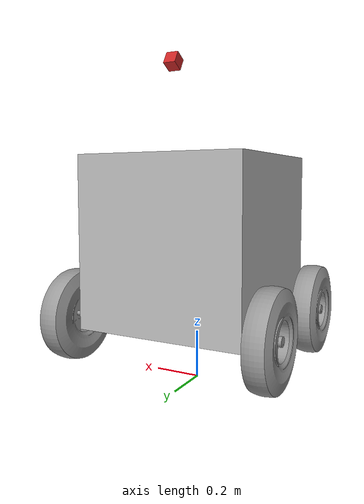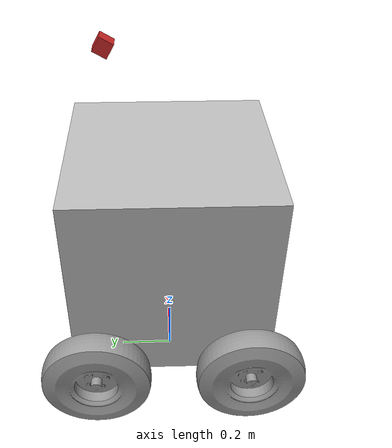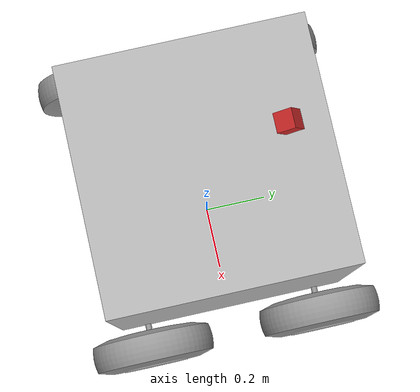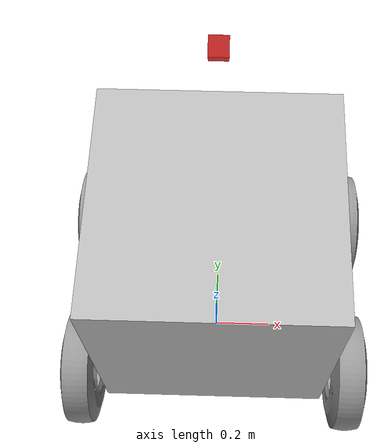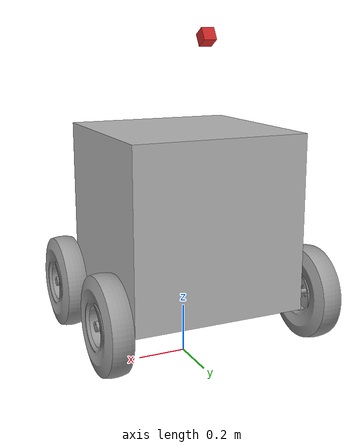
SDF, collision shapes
<?xml version='1.0'?>
<sdf version='1.4'>
  <model name='scipio_simulation'>
    <static>false</static>
    <pose>0 0 0.1 0 0 1.57</pose>
    <link name='base_link'>
      <pose>0 0 0 0 -0 0</pose>
      <inertial>
        <pose>0.00808696 0.174209 -5.1079e-07 0 -0 0</pose>
        <mass>30.6648</mass>
        <inertia>
          <ixx>2.53655</ixx>
          <ixy>-0.0102253</ixy>
          <ixz>1.17409e-05</ixz>
          <iyy>4.29926</iyy>
          <iyz>1.93444e-07</iyz>
          <izz>2.13276</izz>
        </inertia>
      </inertial>
      <collision name='base_link_collision'>
        <pose>0 0 0.5 0 -0 0</pose>
        <geometry>
           <box>
             <size>0.7 0.7 0.7</size>
           </box>
        </geometry>
      </collision>
      <visual name='base_link_visual'>
        <pose>0.049 0.009 0 0 -0 0</pose>
        <geometry>
          <mesh>
            <scale>1 1 1</scale>
            <uri>model://scipio_simulation/meshes/base_link.DAE</uri>
          </mesh>
        </geometry>
      </visual>
      <velocity_decay>
        <linear>0</linear>
        <angular>0</angular>
      </velocity_decay>
    </link>

    <link name='back_left_wheel_link'>
      <pose>0.26746 -0.17757 0.18923 3.0728 -6.245e-17 -1.5708</pose>
      <inertial>
        <pose>0.24702 -3.7896e-07 7.5693e-06 0 -0 0</pose>
        <mass>11.018</mass>
        <inertia>
          <ixx>0.20289</ixx>
          <ixy>2.1691e-07</ixy>
          <ixz>-4.2814e-06</ixz>
          <iyy>0.1147</iyy>
          <iyz>3.8435e-08</iyz>
          <izz>0.1147</izz>
        </inertia>
      </inertial>
      <collision name='back_left_wheel_link_collision'>
        <pose>0 0 0 0 -0 0</pose>
        <geometry>
          <mesh>
            <scale>1 1 1</scale>
            <uri>model://scipio_simulation/meshes/back_left_wheel_link.STL</uri>
          </mesh>
        </geometry>
      </collision>
      <visual name='back_left_wheel_link_visual'>
        <pose>0 0 0 0 -0 0</pose>
        <geometry>
          <mesh>
            <scale>1 1 1</scale>
            <uri>model://scipio_simulation/meshes/back_left_wheel_link.STL</uri>
          </mesh>
        </geometry>
        <material>
          <script>
            <uri>file://media/materials/scripts/gazebo.material</uri>
            <name>Gazebo/Grey</name>
          </script>
        </material>
      </visual>
      <velocity_decay>
        <linear>0</linear>
        <angular>0</angular>
      </velocity_decay>
    </link>
    <joint name='back_left_wheel_joint' type='revolute'>
      <child>back_left_wheel_link</child>
      <parent>base_link</parent>
      <axis>
        <xyz>3.67321e-06 1 -5.89806e-17</xyz>
        <limit>
          <lower>-1e+16</lower>
          <upper>1e+16</upper>
        </limit>
      </axis>
    </joint>

    <link name='back_right_wheel_link'>
      <pose>0.26746 0.17757 0.18923 -3.0192 5.55112e-17 1.5708</pose>
      <inertial>
        <pose>0.24702 -2.4732e-06 -7.1639e-06 0 -0 0</pose>
        <mass>11.018</mass>
        <inertia>
          <ixx>0.20289</ixx>
          <ixy>1.3965e-06</ixy>
          <ixz>4.0531e-06</ixz>
          <iyy>0.1147</iyy>
          <iyz>-2.2566e-07</iyz>
          <izz>0.1147</izz>
        </inertia>
      </inertial>
      <collision name='back_right_wheel_link_collision'>
        <pose>0 0 0 0 -0 0</pose>
        <geometry>
          <mesh>
            <scale>1 1 1</scale>
            <uri>model://scipio_simulation/meshes/back_right_wheel_link.STL</uri>
          </mesh>
        </geometry>
      </collision>
      <visual name='back_right_wheel_link_visual'>
        <pose>0 0 0 0 -0 0</pose>
        <geometry>
          <mesh>
            <scale>1 1 1</scale>
            <uri>model://scipio_simulation/meshes/back_right_wheel_link.STL</uri>
          </mesh>
        </geometry>
        <material>
          <script>
            <uri>file://media/materials/scripts/gazebo.material</uri>
            <name>Gazebo/Grey</name>
          </script>
        </material>
      </visual>
      <velocity_decay>
        <linear>0</linear>
        <angular>0</angular>
      </velocity_decay>
    </link>
    <joint name='back_right_wheel_joint' type='revolute'>
      <child>back_right_wheel_link</child>
      <parent>base_link</parent>
      <axis>
        <xyz>-3.67321e-06 1 -5.55112e-17</xyz>
        <limit>
          <lower>-1e+16</lower>
          <upper>1e+16</upper>
        </limit>
      </axis>
    </joint>

    <link name='front_left_wheel_link'>
      <pose>-0.26746 -0.17757 0.18923 3.0516 -5.55112e-17 -1.5708</pose>
      <inertial>
        <pose>0.24702 -6.9913e-07 7.5465e-06 0 -0 0</pose>
        <mass>11.018</mass>
        <inertia>
          <ixx>0.20289</ixx>
          <ixy>3.9801e-07</ixy>
          <ixz>-4.2684e-06</ixz>
          <iyy>0.1147</iyy>
          <iyz>6.9259e-08</iyz>
          <izz>0.1147</izz>
        </inertia>
      </inertial>
      <collision name='front_left_wheel_link_collision'>
        <pose>0 0 0 0 -0 0</pose>
        <geometry>
          <mesh>
            <scale>1 1 1</scale>
            <uri>model://scipio_simulation/meshes/front_left_wheel_link.STL</uri>
          </mesh>
        </geometry>
      </collision>
      <visual name='front_left_wheel_link_visual'>
        <pose>0 0 0 0 -0 0</pose>
        <geometry>
          <mesh>
            <scale>1 1 1</scale>
            <uri>model://scipio_simulation/meshes/front_left_wheel_link.STL</uri>
          </mesh>
        </geometry>
        <material>
          <script>
            <uri>file://media/materials/scripts/gazebo.material</uri>
            <name>Gazebo/Grey</name>
          </script>
        </material>
      </visual>
      <velocity_decay>
        <linear>0</linear>
        <angular>0</angular>
      </velocity_decay>
    </link>
    <joint name='front_left_wheel_joint' type='revolute'>
      <child>front_left_wheel_link</child>
      <parent>base_link</parent>
      <axis>
        <xyz>3.67321e-06 1 -5.55112e-17</xyz>
        <limit>
          <lower>-1e+16</lower>
          <upper>1e+16</upper>
        </limit>
      </axis>
    </joint>

    <link name='front_right_wheel_link'>
      <pose>-0.26746 0.17757 0.18923 -3.1282 5.81132e-17 1.5708</pose>
      <inertial>
        <pose>0.24702 -8.6541e-07 -7.5292e-06 0 -0 0</pose>
        <mass>11.018</mass>
        <inertia>
          <ixx>0.20289</ixx>
          <ixy>4.8698e-07</ixy>
          <ixz>4.2592e-06</ixz>
          <iyy>0.1147</iyy>
          <iyz>-8.183e-08</iyz>
          <izz>0.1147</izz>
        </inertia>
      </inertial>
      <collision name='front_right_wheel_link_collision'>
        <pose>0 0 0 0 -0 0</pose>
        <geometry>
          <mesh>
            <scale>1 1 1</scale>
            <uri>model://scipio_simulation/meshes/front_right_wheel_link.STL</uri>
          </mesh>
        </geometry>
      </collision>
      <visual name='front_right_wheel_link_visual'>
        <pose>0 0 0 0 -0 0</pose>
        <geometry>
          <mesh>
            <scale>1 1 1</scale>
            <uri>model://scipio_simulation/meshes/front_right_wheel_link.STL</uri>
          </mesh>
        </geometry>
        <material>
          <script>
            <uri>file://media/materials/scripts/gazebo.material</uri>
            <name>Gazebo/Grey</name>
          </script>
        </material>
      </visual>
      <velocity_decay>
        <linear>0</linear>
        <angular>0</angular>
      </velocity_decay>
    </link>
    <joint name='front_right_wheel_joint' type='revolute'>
      <child>front_right_wheel_link</child>
      <parent>base_link</parent>
      <axis>
        <xyz>-3.67321e-06 1 -5.9848e-17</xyz>
        <limit>
          <lower>-1e+16</lower>
          <upper>1e+16</upper>
        </limit>
      </axis>
    </joint>

    <joint name="blackfly_mount_joint" type="revolute">
      <parent>base_link</parent>
      <child>blackfly_mount_link</child>
      <pose>0 0 0 0 0 0</pose>
      <axis>
        <xyz>-1 0 0</xyz>
        <limit>
          <lower>0</lower>
          <upper>0</upper>
        </limit>
      </axis>
    </joint>

    <link name='blackfly_mount_link'>
      <pose>0.2 0 1.2 0 1.04719 0</pose>
      <inertial>
        <mass>1e-5</mass>
        <inertia>
          <ixx>1e-6</ixx>
          <ixy>0</ixy>
          <ixz>0</ixz>
          <iyy>1e-6</iyy>
          <iyz>0.0</iyz>
          <izz>1e-6</izz>
        </inertia>
      </inertial>
      <collision name='blackfly_mount_link_collision'>
        <pose>0 0 0 0 0 0</pose>
        <geometry>
	   <box>
	     <size> 0.05 0.05 0.05 </size>
	   </box>
        </geometry>
      </collision>
      <visual name='blackfly_mount_link_visual'>
        <pose>0 0 0 0 0 0</pose>
        <geometry>
           <box>
             <size> 0.05 0.05 0.05 </size>
           </box>
        </geometry>
        <material>
          <script>
            <uri>file://media/materials/scripts/gazebo.material</uri>
            <name>Gazebo/Red</name>
          </script>
        </material>
      </visual>
      <gravity>1</gravity>
      <velocity_decay>
         <linear>0</linear>
         <angular>0</angular>
      </velocity_decay>
      <self_collide>0</self_collide>

    <sensor name='blackfly_camera' type='camera'>
      <update_rate>20</update_rate>
      <camera name="head">
        <horizontal_fov>2.09</horizontal_fov>
        <image>
          <width>1280</width>
          <height>960</height>
          <format>R8G8B8</format>
        </image>
        <clip>
          <near>0.02</near>
          <far>300</far>
        </clip>
        <noise>
          <type>gaussian</type>
          <!-- Noise is sampled independently per pixel on each frame.
               That pixel's noise value is added to each of its color
               channels, which at that point lie in the range [0,1]. -->
          <mean>0.0</mean>
          <stddev>0.007</stddev>
        </noise>
      </camera>
       <pose>0 0 0 0 0 0</pose>
        <plugin name="camera_controller" filename="libgazebo_ros_camera.so">
        <alwaysOn>true</alwaysOn>
        <updateRate>0.0</updateRate>
        <cameraName>camera</cameraName>
        <imageTopicName>image_raw</imageTopicName>
        <cameraInfoTopicName>camera_info</cameraInfoTopicName>
        <frameName>blackfly_mount_link</frameName>
        <hackBaseline>0.07</hackBaseline>

        <distortionK1>0.0</distortionK1>
        <distortionK2>0.0</distortionK2>
        <distortionK3>0.0</distortionK3>
        <distortionT1>0.0</distortionT1>
        <distortionT2>0.0</distortionT2>
      </plugin>
      </sensor>
     </link>

      <link name='imu_link'>
         <inertial>
            <pose>0 0 0 0 0 0</pose>
            <mass>0.001</mass>
            <inertia>
                <ixx>1e-09</ixx>
                <ixy>0</ixy>
                <ixz>0</ixz>
                <iyy>1e-09</iyy>
                <iyz>0</iyz>
                <izz>1e-09</izz>
            </inertia>
          </inertial>
      </link>
      <joint name='imu_joint' type='revolute'>
          <child>imu_link</child>
          <parent>base_link</parent>
          <axis>
              <xyz>0 0 1</xyz>
       	      <limit>
                 <lower>0</lower>
                 <upper>0</upper>
              </limit>
          </axis>
      </joint>

      <link name='gps_link'>
         <inertial>
            <pose>0 0 0 0 0 0</pose>
            <mass>0.001</mass>
            <inertia>
                <ixx>1e-09</ixx>
                <ixy>0</ixy>
                <ixz>0</ixz>
                <iyy>1e-09</iyy>
                <iyz>0</iyz>
                <izz>1e-09</izz>
            </inertia>
          </inertial>
      </link>
      <joint name='gps_joint' type='revolute'>
	  <pose>0 0 0 0 0 0</pose>
          <child>gps_link</child>
          <parent>base_link</parent>
          <axis>
              <xyz>0 0 1</xyz>
              <limit>
                 <lower>0</lower>
                 <upper>0</upper>
              </limit>
          </axis>
      </joint>

     <plugin name="skid_steer_drive_controller" filename="libgazebo_ros_skid_steer_drive.so">
   	<updateRate>35.0</updateRate>
   	<robotNamespace>/</robotNamespace>
   	<leftFrontJoint>back_right_wheel_joint</leftFrontJoint>
   	<rightFrontJoint>back_left_wheel_joint</rightFrontJoint>
   	<leftRearJoint>front_right_wheel_joint</leftRearJoint>
   	<rightRearJoint>front_left_wheel_joint</rightRearJoint>
   	<wheelSeparation>0.854431</wheelSeparation>
   	<wheelDiameter>0.379476</wheelDiameter>
   	<robotBaseFrame>base_footprint</robotBaseFrame>
   	<torque>40</torque>
   	<commandTopic>cmd_vel</commandTopic>
	<odometryTopic>raw_odom</odometryTopic>
	<odometryFrame>odom</odometryFrame>
     </plugin>

	<plugin name="gps_controller" filename="libhector_gazebo_ros_gps.so">
		<updateRate>40</updateRate>
		<robotNamespace>/</robotNamespace>
		<bodyName>gps_link</bodyName>
		<frameId>base_footprint</frameId>
		<topicName>fix</topicName>
		<velocityTopicName>/navsat/vel</velocityTopicName>
		<referenceLatitude>49.9</referenceLatitude>
		<referenceLongitude>8.9</referenceLongitude>
		<referenceHeading>0</referenceHeading>
		<referenceAltitude>0</referenceAltitude>
		<drift>0.0000 0.0000 0.0000</drift>
	</plugin>
	<plugin name="imu_controller" filename="libhector_gazebo_ros_imu.so">
		<robotNamespace>/</robotNamespace>
		<updateRate>50.0</updateRate>
		<bodyName>base_link</bodyName>
		<topicName>imu/data</topicName>
		<accelDrift>0.00 0.00 0.00</accelDrift>
		<accelGaussianNoise>0.00 0.00 0.00</accelGaussianNoise>
		<rateDrift>0.00 0.00 0.00</rateDrift>
		<rateGaussianNoise>0.00 0.00 0.00 </rateGaussianNoise>
		<headingDrift>0.00</headingDrift>
		<headingGaussianNoise>0.00</headingGaussianNoise>
	</plugin>

      <link name='laser'>
         <pose>0.428 0 0.485 0 0 0</pose>
         <inertial>
            <pose>0 0 0 0 0 0</pose>
            <mass>0.001</mass>
            <inertia>
                <ixx>1e-09</ixx>
                <ixy>0</ixy>
                <ixz>0</ixz>
                <iyy>1e-09</iyy>
                <iyz>0</iyz>
                <izz>1e-09</izz>
            </inertia>
          </inertial>

<sensor type="ray" name="laser">
<pose>0 0 0 0 0 0</pose>
<visualize>true</visualize>
<update_rate>15</update_rate>
<ray>
<scan>
<horizontal>
<samples>720</samples>
<resolution>1</resolution>
<min_angle>-1.570796</min_angle>
<max_angle>1.570796</max_angle>
</horizontal>
</scan>
<range>
<min>0.08</min>
<max>10.0</max>
<resolution>0.05</resolution>
</range>
<noise>
<type>gaussian</type>
<mean>0.0</mean>
<stddev>0.000</stddev>
</noise>
</ray>
<plugin name="gazebo_ros_laser" filename="libgazebo_ros_laser.so">
<topicName>scan</topicName>
<frameName>laser</frameName>
</plugin>
</sensor>

      </link>

      <joint name='laser_joint' type='revolute'>
          <child>laser</child>
          <parent>base_link</parent>
          <axis>
              <xyz>0 0 1</xyz>
              <limit>
                 <lower>0</lower>
                 <upper>0</upper>
              </limit>
          </axis>
      </joint>

  </model>
</sdf>
